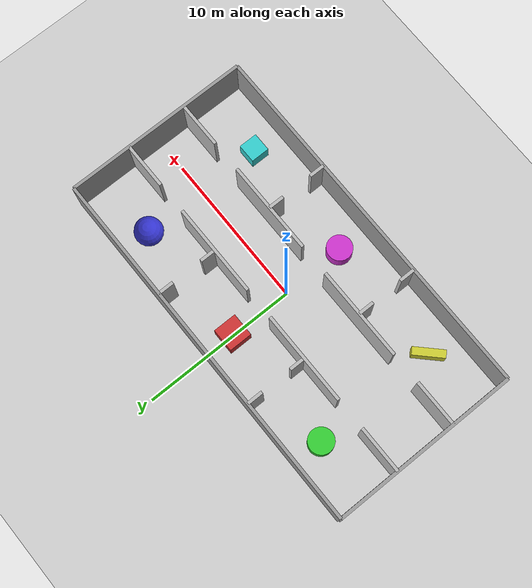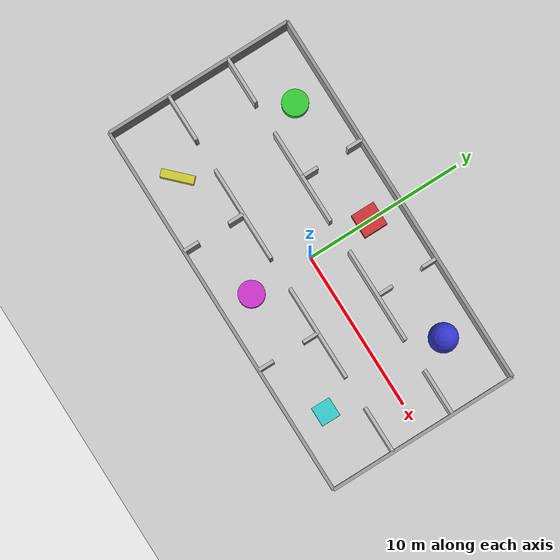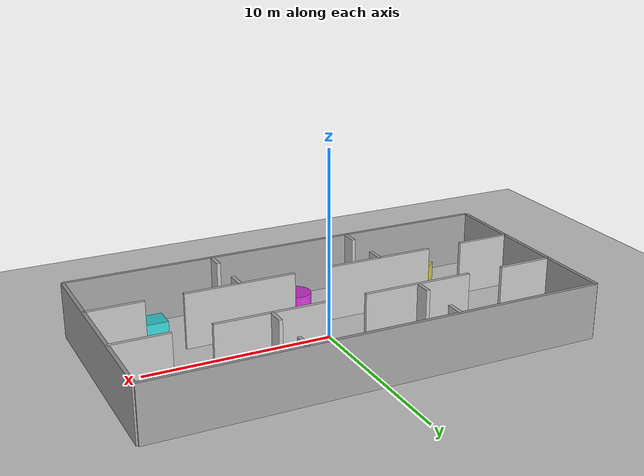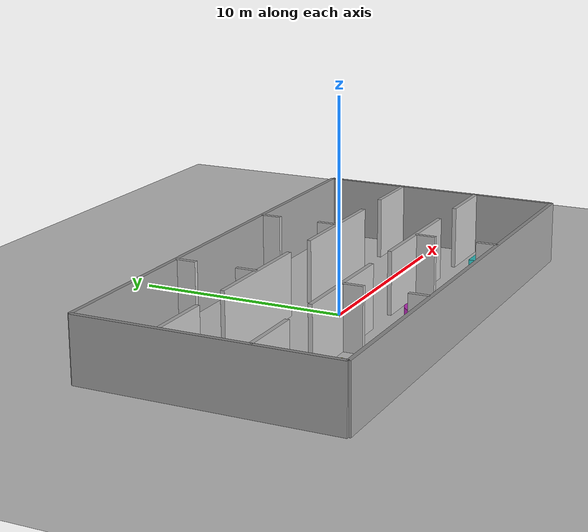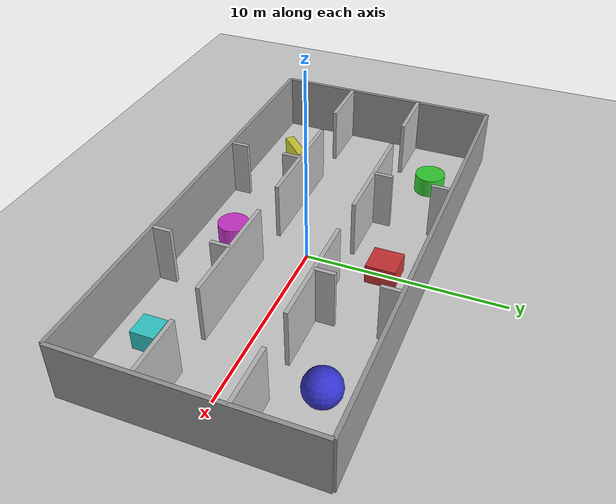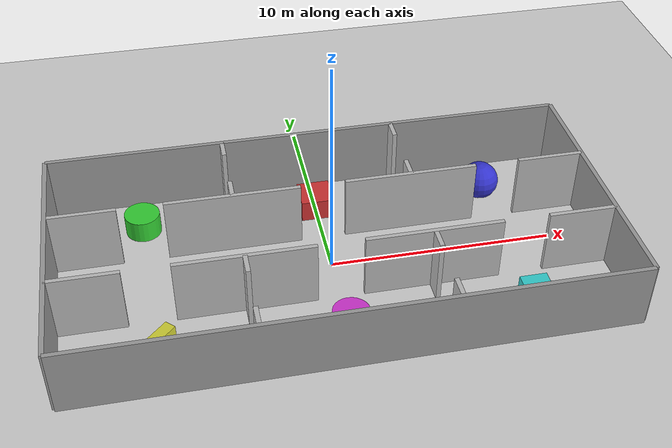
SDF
<?xml version="1.0" ?>
<sdf version="1.9">
  <world name="six_rooms_env">
    <physics name="1ms" type="ignored">
      <max_step_size>0.02</max_step_size>
      <real_time_factor>0</real_time_factor>
    </physics>
    <plugin filename="gz-sim-physics-system" name="gz::sim::systems::Physics"/>
    <plugin filename="gz-sim-user-commands-system" name="gz::sim::systems::UserCommands"/>
    <plugin filename="gz-sim-scene-broadcaster-system" name="gz::sim::systems::SceneBroadcaster"/>
    <plugin filename="gz-sim-sensors-system" name="gz::sim::systems::Sensors">
      <render_engine>ogre2</render_engine>
    </plugin>
    <plugin filename="gz-sim-imu-system" name="gz::sim::systems::Imu"/>
    <plugin filename="gz-sim-contact-system" name="gz::sim::systems::Contact"/>

    <gravity>0 0 -9.81</gravity>

    <light type="directional" name="sun">
      <cast_shadows>true</cast_shadows>
      <pose>0 0 10 0 0 0</pose>
      <diffuse>0.8 0.8 0.8 1</diffuse>
      <specular>0.2 0.2 0.2 1</specular>
      <direction>-0.5 0.1 -0.9</direction>
    </light>

    <model name="ground_plane">
      <static>true</static>
      <link name="link">
        <collision name="collision">
          <geometry><plane><normal>0 0 1</normal><size>30 20</size></plane></geometry>
        </collision>
        <visual name="visual">
          <geometry><plane><normal>0 0 1</normal><size>30 20</size></plane></geometry>
          <material><ambient>0.8 0.8 0.8 1</ambient><diffuse>0.8 0.8 0.8 1</diffuse></material>
        </visual>
      </link>
    </model>

    <!-- 24x12m Building with 6 rooms and a central horizontal corridor -->
    <model name="building">
      <static>true</static>

      <!-- Outer Walls -->
      <!-- North (y=6) -->
      <link name="wall_n">
        <pose>0 6 1.5 0 0 0</pose>
        <collision name="c"><geometry><box><size>24 0.2 3</size></box></geometry></collision>
        <visual name="v"><geometry><box><size>24 0.2 3</size></box></geometry>
          <material><ambient>0.6 0.6 0.6 1</ambient></material></visual>
      </link>
      <!-- South (y=-6) -->
      <link name="wall_s">
        <pose>0 -6 1.5 0 0 0</pose>
        <collision name="c"><geometry><box><size>24 0.2 3</size></box></geometry></collision>
        <visual name="v"><geometry><box><size>24 0.2 3</size></box></geometry>
          <material><ambient>0.6 0.6 0.6 1</ambient></material></visual>
      </link>
      <!-- West (x=-12) -->
      <link name="wall_w">
        <pose>-12 0 1.5 0 0 0</pose>
        <collision name="c"><geometry><box><size>0.2 12 3</size></box></geometry></collision>
        <visual name="v"><geometry><box><size>0.2 12 3</size></box></geometry>
          <material><ambient>0.6 0.6 0.6 1</ambient></material></visual>
      </link>
      <!-- East (x=12) -->
      <link name="wall_e">
        <pose>12 0 1.5 0 0 0</pose>
        <collision name="c"><geometry><box><size>0.2 12 3</size></box></geometry></collision>
        <visual name="v"><geometry><box><size>0.2 12 3</size></box></geometry>
          <material><ambient>0.6 0.6 0.6 1</ambient></material></visual>
      </link>

      <!-- Corridor Walls (y=2 and y=-2) with doors -->
      <!-- Top Corridor Wall (y=2) -->
      <!-- Segments: [-12, -9], [-7, -1], [1, 7], [9, 12] -->
      <link name="wall_corr_t1">
        <pose>-10.5 2 1.5 0 0 0</pose>
        <collision name="c"><geometry><box><size>3 0.2 3</size></box></geometry></collision>
        <visual name="v"><geometry><box><size>3 0.2 3</size></box></geometry></visual>
      </link>
      <link name="wall_corr_t2">
        <pose>-4 2 1.5 0 0 0</pose>
        <collision name="c"><geometry><box><size>6 0.2 3</size></box></geometry></collision>
        <visual name="v"><geometry><box><size>6 0.2 3</size></box></geometry></visual>
      </link>
      <link name="wall_corr_t3">
        <pose>4 2 1.5 0 0 0</pose>
        <collision name="c"><geometry><box><size>6 0.2 3</size></box></geometry></collision>
        <visual name="v"><geometry><box><size>6 0.2 3</size></box></geometry></visual>
      </link>
      <link name="wall_corr_t4">
        <pose>10.5 2 1.5 0 0 0</pose>
        <collision name="c"><geometry><box><size>3 0.2 3</size></box></geometry></collision>
        <visual name="v"><geometry><box><size>3 0.2 3</size></box></geometry></visual>
      </link>

      <!-- Bottom Corridor Wall (y=-2) -->
      <link name="wall_corr_b1">
        <pose>-10.5 -2 1.5 0 0 0</pose>
        <collision name="c"><geometry><box><size>3 0.2 3</size></box></geometry></collision>
        <visual name="v"><geometry><box><size>3 0.2 3</size></box></geometry></visual>
      </link>
      <link name="wall_corr_b2">
        <pose>-4 -2 1.5 0 0 0</pose>
        <collision name="c"><geometry><box><size>6 0.2 3</size></box></geometry></collision>
        <visual name="v"><geometry><box><size>6 0.2 3</size></box></geometry></visual>
      </link>
      <link name="wall_corr_b3">
        <pose>4 -2 1.5 0 0 0</pose>
        <collision name="c"><geometry><box><size>6 0.2 3</size></box></geometry></collision>
        <visual name="v"><geometry><box><size>6 0.2 3</size></box></geometry></visual>
      </link>
      <link name="wall_corr_b4">
        <pose>10.5 -2 1.5 0 0 0</pose>
        <collision name="c"><geometry><box><size>3 0.2 3</size></box></geometry></collision>
        <visual name="v"><geometry><box><size>3 0.2 3</size></box></geometry></visual>
      </link>

      <!-- Vertical Partition Walls with doors between adjacent rooms -->
      <!-- Top rooms partition 1 (x=-4), gap at y=3 to 5 -->
      <link name="wall_part_t1_a">
        <pose>-4 2.5 1.5 0 0 0</pose>
        <collision name="c"><geometry><box><size>0.2 1 3</size></box></geometry></collision>
        <visual name="v"><geometry><box><size>0.2 1 3</size></box></geometry></visual>
      </link>
      <link name="wall_part_t1_b">
        <pose>-4 5.5 1.5 0 0 0</pose>
        <collision name="c"><geometry><box><size>0.2 1 3</size></box></geometry></collision>
        <visual name="v"><geometry><box><size>0.2 1 3</size></box></geometry></visual>
      </link>
      <!-- Top rooms partition 2 (x=4), gap at y=3 to 5 -->
      <link name="wall_part_t2_a">
        <pose>4 2.5 1.5 0 0 0</pose>
        <collision name="c"><geometry><box><size>0.2 1 3</size></box></geometry></collision>
        <visual name="v"><geometry><box><size>0.2 1 3</size></box></geometry></visual>
      </link>
      <link name="wall_part_t2_b">
        <pose>4 5.5 1.5 0 0 0</pose>
        <collision name="c"><geometry><box><size>0.2 1 3</size></box></geometry></collision>
        <visual name="v"><geometry><box><size>0.2 1 3</size></box></geometry></visual>
      </link>

      <!-- Bottom rooms partition 1 (x=-4), gap at y=-5 to -3 -->
      <link name="wall_part_b1_a">
        <pose>-4 -2.5 1.5 0 0 0</pose>
        <collision name="c"><geometry><box><size>0.2 1 3</size></box></geometry></collision>
        <visual name="v"><geometry><box><size>0.2 1 3</size></box></geometry></visual>
      </link>
      <link name="wall_part_b1_b">
        <pose>-4 -5.5 1.5 0 0 0</pose>
        <collision name="c"><geometry><box><size>0.2 1 3</size></box></geometry></collision>
        <visual name="v"><geometry><box><size>0.2 1 3</size></box></geometry></visual>
      </link>
      <!-- Bottom rooms partition 2 (x=4), gap at y=-5 to -3 -->
      <link name="wall_part_b2_a">
        <pose>4 -2.5 1.5 0 0 0</pose>
        <collision name="c"><geometry><box><size>0.2 1 3</size></box></geometry></collision>
        <visual name="v"><geometry><box><size>0.2 1 3</size></box></geometry></visual>
      </link>
      <link name="wall_part_b2_b">
        <pose>4 -5.5 1.5 0 0 0</pose>
        <collision name="c"><geometry><box><size>0.2 1 3</size></box></geometry></collision>
        <visual name="v"><geometry><box><size>0.2 1 3</size></box></geometry></visual>
      </link>
    </model>

    <!-- Obstacles (1 per room, static, different shapes) -->

    <!-- Room 1 (Top Left) -->
    <model name="obs_1">
      <static>true</static>
      <pose>-8 4 0.5 0 0 0</pose>
      <link name="link">
        <collision name="c"><geometry><cylinder><radius>0.8</radius><length>1.0</length></cylinder></geometry></collision>
        <visual name="v"><geometry><cylinder><radius>0.8</radius><length>1.0</length></cylinder></geometry>
        <material><ambient>0.2 0.8 0.2 1</ambient></material></visual>
      </link>
    </model>

    <!-- Room 2 (Top Mid) -->
    <model name="obs_2">
      <static>true</static>
      <pose>0 4 0.5 0 0 0</pose>
      <link name="link">
        <collision name="c"><geometry><box><size>1.5 1.5 1.0</size></box></geometry></collision>
        <visual name="v"><geometry><box><size>1.5 1.5 1.0</size></box></geometry>
        <material><ambient>0.8 0.2 0.2 1</ambient></material></visual>
      </link>
    </model>

    <!-- Room 3 (Top Right) -->
    <model name="obs_3">
      <static>true</static>
      <pose>8 4 0.5 0 0 0</pose>
      <link name="link">
        <collision name="c"><geometry><sphere><radius>0.9</radius></sphere></geometry></collision>
        <visual name="v"><geometry><sphere><radius>0.9</radius></sphere></geometry>
        <material><ambient>0.2 0.2 0.8 1</ambient></material></visual>
      </link>
    </model>

    <!-- Room 4 (Bottom Left) -->
    <model name="obs_4">
      <static>true</static>
      <pose>-8 -4 0.5 0 0 0.785398</pose>
      <link name="link">
        <collision name="c"><geometry><box><size>2.0 0.5 1.0</size></box></geometry></collision>
        <visual name="v"><geometry><box><size>2.0 0.5 1.0</size></box></geometry>
        <material><ambient>0.8 0.8 0.2 1</ambient></material></visual>
      </link>
    </model>

    <!-- Room 5 (Bottom Mid) -->
    <model name="obs_5">
      <static>true</static>
      <pose>0 -4 0.5 0 0 0</pose>
      <link name="link">
        <collision name="c"><geometry><cylinder><radius>0.8</radius><length>1.0</length></cylinder></geometry></collision>
        <visual name="v"><geometry><cylinder><radius>0.8</radius><length>1.0</length></cylinder></geometry>
        <material><ambient>0.8 0.2 0.8 1</ambient></material></visual>
      </link>
    </model>

    <!-- Room 6 (Bottom Right) -->
    <model name="obs_6">
      <static>true</static>
      <pose>8 -4 0.5 0 0 0</pose>
      <link name="link">
        <collision name="c"><geometry><box><size>1.2 1.2 1.0</size></box></geometry></collision>
        <visual name="v"><geometry><box><size>1.2 1.2 1.0</size></box></geometry>
        <material><ambient>0.2 0.8 0.8 1</ambient></material></visual>
      </link>
    </model>

  </world>
</sdf>
